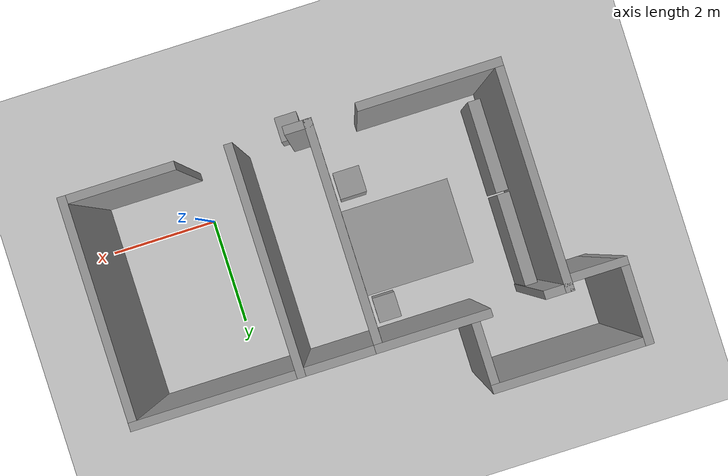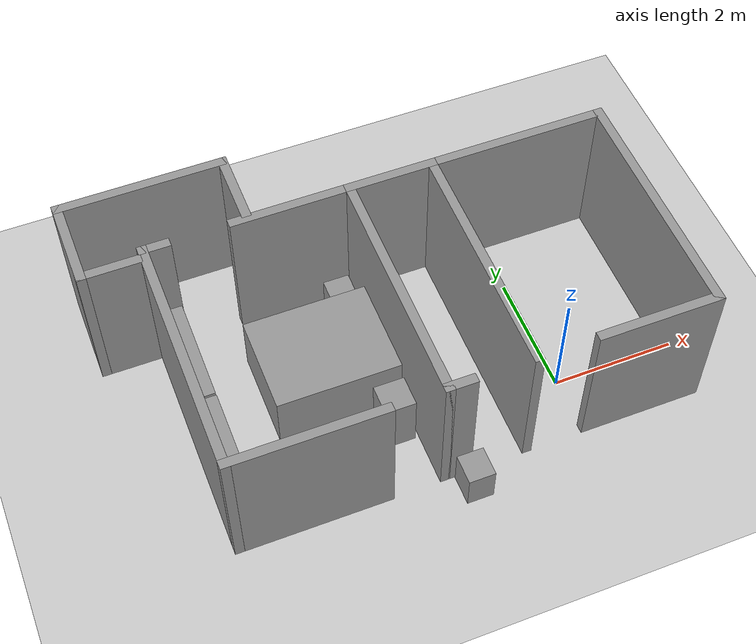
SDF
<sdf version="1.9">
 <world name="default">
  <model name="ground_plane">
   <static>true</static>
   <link name="link">
    <collision name="collision">
     <geometry><plane><normal>0 0 1</normal><size>100 100</size></plane></geometry>
     <surface><friction><ode><mu>100</mu><mu2>50</mu2></ode></friction></surface>
    </collision>
    <visual name="visual">
     <cast_shadows>false</cast_shadows>
     <geometry><plane><normal>0 0 1</normal><size>100 100</size></plane></geometry>
     <material>
      <script><uri>file://media/materials/scripts/gazebo.material</uri><name>Gazebo/Grey</name></script>
     </material>
    </visual>
   </link>
  </model>
  <model name="cma_escritorio">
   <pose>-1.8304 1.03024 0 0 0 0</pose>
   <link name="Wall_11">
    <collision name="Wall_11_Collision">
     <geometry><box><size>2 0.14999999999999999 2.5</size></box></geometry>
     <pose>0 0 1.25 0 0 0</pose>
    </collision>
    <visual name="Wall_11_Visual">
     <pose>0 0 1.25 0 0 0</pose>
     <geometry><box><size>2 0.14999999999999999 2.5</size></box></geometry>
     <material>
      <script><uri>file://media/materials/scripts/gazebo.material</uri><name>Gazebo/Grey</name></script>
      <ambient>1 1 1 1</ambient>
     </material>
    </visual>
    <pose>-1.3999999999999999 1.9299999999999999 0 0 0 3.1415899999999999</pose>
   </link>
   <link name="Wall_2">
    <collision name="Wall_2_Collision">
     <geometry><box><size>4 0.14999999999999999 2.5</size></box></geometry>
     <pose>0 0 1.25 0 0 0</pose>
    </collision>
    <visual name="Wall_2_Visual">
     <pose>0 0 1.25 0 0 0</pose>
     <geometry><box><size>4 0.14999999999999999 2.5</size></box></geometry>
     <material>
      <script><uri>file://media/materials/scripts/gazebo.material</uri><name>Gazebo/Grey</name></script>
      <ambient>1 1 1 1</ambient>
     </material>
    </visual>
    <pose>0.875 0.0050000000000000001 0 0 0 1.5708</pose>
   </link>
   <link name="Wall_25">
    <collision name="Wall_25_Collision">
     <geometry><box><size>2.5 0.14999999999999999 2.5</size></box></geometry>
     <pose>0 0 1.25 0 0 0</pose>
    </collision>
    <visual name="Wall_25_Visual">
     <pose>0 0 1.25 0 0 0</pose>
     <geometry><box><size>2.5 0.14999999999999999 2.5</size></box></geometry>
     <material>
      <script><uri>file://media/materials/scripts/gazebo.material</uri><name>Gazebo/Grey</name></script>
      <ambient>1 1 1 1</ambient>
     </material>
    </visual>
    <pose>-2.5499999999999998 -1.9299999999999999 0 0 0 3.1415899999999999</pose>
   </link>
   <link name="Wall_26">
    <collision name="Wall_26_Collision">
     <geometry><box><size>4 0.14999999999999999 2.5</size></box></geometry>
     <pose>0 0 1.25 0 0 0</pose>
    </collision>
    <visual name="Wall_26_Visual">
     <pose>0 0 1.25 0 0 0</pose>
     <geometry><box><size>4 0.14999999999999999 2.5</size></box></geometry>
     <material>
      <script><uri>file://media/materials/scripts/gazebo.material</uri><name>Gazebo/Grey</name></script>
      <ambient>1 1 1 1</ambient>
     </material>
    </visual>
    <pose>-3.7250000000000001 -0.0050000000000000001 0 0 0 1.5708</pose>
   </link>
   <link name="Wall_27">
    <collision name="Wall_27_Collision">
     <geometry><box><size>0.5 0.14999999999999999 2.5</size></box></geometry>
     <pose>0 0 1.25 0 0 0</pose>
    </collision>
    <visual name="Wall_27_Visual">
     <pose>0 0 1.25 0 0 0</pose>
     <geometry><box><size>0.5 0.14999999999999999 2.5</size></box></geometry>
     <material>
      <script><uri>file://media/materials/scripts/gazebo.material</uri><name>Gazebo/Grey</name></script>
      <ambient>1 1 1 1</ambient>
     </material>
    </visual>
    <pose>-3.5499999999999998 1.9199999999999999 0 0 0 0</pose>
   </link>
   <link name="Wall_3">
    <collision name="Wall_3_Collision">
     <geometry><box><size>3 0.14999999999999999 2.5</size></box></geometry>
     <pose>0 0 1.25 0 0 0</pose>
    </collision>
    <visual name="Wall_3_Visual">
     <pose>0 0 1.25 0 0 0</pose>
     <geometry><box><size>3 0.14999999999999999 2.5</size></box></geometry>
     <material>
      <script><uri>file://media/materials/scripts/gazebo.material</uri><name>Gazebo/Grey</name></script>
      <ambient>1 1 1 1</ambient>
     </material>
    </visual>
    <pose>2.2999999999999998 1.9299999999999999 0 0 0 0</pose>
   </link>
   <link name="Wall_4">
    <collision name="Wall_4_Collision">
     <geometry><box><size>4 0.14999999999999999 2.5</size></box></geometry>
     <pose>0 0 1.25 0 0 0</pose>
    </collision>
    <visual name="Wall_4_Visual">
     <pose>0 0 1.25 0 0 0</pose>
     <geometry><box><size>4 0.14999999999999999 2.5</size></box></geometry>
     <material>
      <script><uri>file://media/materials/scripts/gazebo.material</uri><name>Gazebo/Grey</name></script>
      <ambient>1 1 1 1</ambient>
     </material>
    </visual>
    <pose>3.7250000000000001 0.0050000000000000001 0 0 0 -1.5708</pose>
   </link>
   <link name="Wall_5">
    <collision name="Wall_5_Collision">
     <geometry><box><size>2 0.14999999999999999 2.5</size></box></geometry>
     <pose>0 0 1.25 0 0 0</pose>
    </collision>
    <visual name="Wall_5_Visual">
     <pose>0 0 1.25 0 0 0</pose>
     <geometry><box><size>2 0.14999999999999999 2.5</size></box></geometry>
     <material>
      <script><uri>file://media/materials/scripts/gazebo.material</uri><name>Gazebo/Grey</name></script>
      <ambient>1 1 1 1</ambient>
     </material>
    </visual>
    <pose>2.7999999999999998 -1.9199999999999999 0 0 0 3.1415899999999999</pose>
   </link>
   <link name="Wall_7">
    <collision name="Wall_7_Collision">
     <geometry><box><size>1.5 0.14999999999999999 2.5</size></box></geometry>
     <pose>0 0 1.25 0 0 0</pose>
    </collision>
    <visual name="Wall_7_Visual">
     <pose>0 0 1.25 0 0 0</pose>
     <geometry><box><size>1.5 0.14999999999999999 2.5</size></box></geometry>
     <material>
      <script><uri>file://media/materials/scripts/gazebo.material</uri><name>Gazebo/Grey</name></script>
      <ambient>1 1 1 1</ambient>
     </material>
    </visual>
    <pose>0.20000000000000001 1.9299999999999999 0 0 0 3.1415899999999999</pose>
   </link>
   <link name="Wall_8">
    <collision name="Wall_8_Collision">
     <geometry><box><size>4 0.14999999999999999 2.5</size></box></geometry>
     <pose>0 0 1.25 0 0 0</pose>
    </collision>
    <visual name="Wall_8_Visual">
     <pose>0 0 1.25 0 0 0</pose>
     <geometry><box><size>4 0.14999999999999999 2.5</size></box></geometry>
     <material>
      <script><uri>file://media/materials/scripts/gazebo.material</uri><name>Gazebo/Grey</name></script>
      <ambient>1 1 1 1</ambient>
     </material>
    </visual>
    <pose>-0.47499999999999998 0.0050000000000000001 0 0 0 -1.5708</pose>
   </link>
   <link name="Wall_9">
    <collision name="Wall_9_Collision">
     <geometry><box><size>0.5 0.14999999999999999 2.5</size></box></geometry>
     <pose>0 0 1.25 0 0 0</pose>
    </collision>
    <visual name="Wall_9_Visual">
     <pose>0 0 1.25 0 0 0</pose>
     <geometry><box><size>0.5 0.14999999999999999 2.5</size></box></geometry>
     <material>
      <script><uri>file://media/materials/scripts/gazebo.material</uri><name>Gazebo/Grey</name></script>
      <ambient>1 1 1 1</ambient>
     </material>
    </visual>
    <pose>-0.29999999999999999 -1.9199999999999999 0 0 0 0</pose>
   </link>
   <static>true</static>
  </model>
  <model name="cma_banheiro">
   <pose>-5.2292800000000002 3.4870999999999999 0 0 0 0</pose>
   <link name="Wall_0">
    <collision name="Wall_0_Collision">
     <geometry><box><size>1 0.14999999999999999 2.5</size></box></geometry>
     <pose>0 0 1.25 0 0 0</pose>
    </collision>
    <visual name="Wall_0_Visual">
     <pose>0 0 1.25 0 0 0</pose>
     <geometry><box><size>1 0.14999999999999999 2.5</size></box></geometry>
     <material>
      <script><uri>file://media/materials/scripts/gazebo.material</uri><name>Gazebo/Grey</name></script>
      <ambient>1 1 1 1</ambient>
     </material>
    </visual>
    <pose>-0.875 -0.67500000000000004 0 0 0 3.1415899999999999</pose>
   </link>
   <link name="Wall_1">
    <collision name="Wall_1_Collision">
     <geometry><box><size>1.5 0.14999999999999999 2.5</size></box></geometry>
     <pose>0 0 1.25 0 0 0</pose>
    </collision>
    <visual name="Wall_1_Visual">
     <pose>0 0 1.25 0 0 0</pose>
     <geometry><box><size>1.5 0.14999999999999999 2.5</size></box></geometry>
     <material>
      <script><uri>file://media/materials/scripts/gazebo.material</uri><name>Gazebo/Grey</name></script>
      <ambient>1 1 1 1</ambient>
     </material>
    </visual>
    <pose>-1.3 0 0 0 0 1.5708</pose>
   </link>
   <link name="Wall_2">
    <collision name="Wall_2_Collision">
     <geometry><box><size>2.75 0.14999999999999999 2.5</size></box></geometry>
     <pose>0 0 1.25 0 0 0</pose>
    </collision>
    <visual name="Wall_2_Visual">
     <pose>0 0 1.25 0 0 0</pose>
     <geometry><box><size>2.75 0.14999999999999999 2.5</size></box></geometry>
     <material>
      <script><uri>file://media/materials/scripts/gazebo.material</uri><name>Gazebo/Grey</name></script>
      <ambient>1 1 1 1</ambient>
     </material>
    </visual>
    <pose>0 0.67500000000000004 0 0 0 0</pose>
   </link>
   <link name="Wall_4">
    <collision name="Wall_4_Collision">
     <geometry><box><size>1.25 0.14999999999999999 2.5</size></box></geometry>
     <pose>0 0 1.25 0 0 0</pose>
    </collision>
    <visual name="Wall_4_Visual">
     <pose>0 0 1.25 0 0 0</pose>
     <geometry><box><size>1.25 0.14999999999999999 2.5</size></box></geometry>
     <material>
      <script><uri>file://media/materials/scripts/gazebo.material</uri><name>Gazebo/Grey</name></script>
      <ambient>1 1 1 1</ambient>
     </material>
    </visual>
    <pose>1.3 0.125 0 0 0 -1.5708</pose>
   </link>
   <static>true</static>
  </model>
  <model name="cma_bau_s">
   <link name="link_1">
    <pose>0.109594 0.27229300000000001 0 0 0 0</pose>
    <inertial>
     <mass>0.12547900000000001</mass>
     <inertia>
      <ixx>0.0064194300000000003</ixx>
      <ixy>0</ixy>
      <ixz>0</ixz>
      <iyy>0.0059753999999999996</iyy>
      <iyz>0</iyz>
      <izz>0.0042208499999999999</izz>
     </inertia>
    </inertial>
    <visual name="visual">
     <geometry><box><size>0.42496400000000001 0.47228300000000001 0.62511799999999995</size></box></geometry>
     <material>
      <lighting>true</lighting>
      <script><uri>file://media/materials/scripts/gazebo.material</uri><name>Gazebo/Grey</name></script>
      <ambient>0.300000012 0.300000012 0.300000012 1</ambient>
      <diffuse>0.699999988 0.699999988 0.699999988 1</diffuse>
      <specular>0.00999999978 0.00999999978 0.00999999978 1</specular>
      <emissive>0 0 0 1</emissive>
     </material>
    </visual>
    <collision name="collision">
     <geometry><box><size>0.42496400000000001 0.47228300000000001 0.62511799999999995</size></box></geometry>
     <surface>
      <friction>
       <ode><mu>1</mu><mu2>1</mu2><fdir1>0 0 0</fdir1><slip1>0</slip1><slip2>0</slip2></ode>
       <torsional>
        <coefficient>1</coefficient>
        <patch_radius>0</patch_radius>
        <surface_radius>0</surface_radius>
        <use_patch_radius>true</use_patch_radius>
        <ode><slip>0</slip></ode>
       </torsional>
      </friction>
      <bounce><restitution_coefficient>0</restitution_coefficient><threshold>1000000</threshold></bounce>
      <contact>
       <collide_without_contact>false</collide_without_contact>
       <collide_without_contact_bitmask>1</collide_without_contact_bitmask>
       <collide_bitmask>1</collide_bitmask>
       <ode>
        <soft_cfm>0</soft_cfm>
        <soft_erp>0.20000000000000001</soft_erp>
        <kp>10000000000000</kp>
        <kd>1</kd>
        <max_vel>0.01</max_vel>
        <min_depth>0</min_depth>
       </ode>
       <bullet>
        <split_impulse>true</split_impulse>
        <split_impulse_penetration_threshold>-0.01</split_impulse_penetration_threshold>
        <soft_cfm>0</soft_cfm>
        <soft_erp>0.20000000000000001</soft_erp>
        <kp>10000000000000</kp>
        <kd>1</kd>
       </bullet>
      </contact>
     </surface>
    </collision>
   </link>
   <static>false</static>
   <pose>-2.04284 -1.48573 0.31255899999999998 3.0000000000000005e-06 -1.0339757656912846e-25 0.000406</pose>
  </model>
  <model name="cma_cama_c_0">
   <link name="link_0">
    <pose>5.0000000000000004e-06 -3.9999999999999998e-06 0 0 0 0</pose>
    <inertial>
     <mass>3.1835800000000001</mass>
     <inertia>
      <ixx>0.93486199999999997</ixx>
      <ixy>0</ixy>
      <ixz>0</ixz>
      <iyy>1.3306899999999999</iyy>
      <iyz>0</iyz>
      <izz>1.7349600000000001</izz>
     </inertia>
    </inertial>
    <visual name="visual">
     <geometry><box><size>2.0039400000000001 1.58866 1</size></box></geometry>
     <material>
      <lighting>true</lighting>
      <script><uri>file://media/materials/scripts/gazebo.material</uri><name>Gazebo/Grey</name></script>
      <ambient>0.300000012 0.300000012 0.300000012 1</ambient>
      <diffuse>0.699999988 0.699999988 0.699999988 1</diffuse>
      <specular>0.00999999978 0.00999999978 0.00999999978 1</specular>
      <emissive>0 0 0 1</emissive>
     </material>
    </visual>
    <collision name="collision">
     <geometry><box><size>2.0039400000000001 1.58866 1</size></box></geometry>
     <surface>
      <friction>
       <ode><mu>1</mu><mu2>1</mu2><fdir1>0 0 0</fdir1><slip1>0</slip1><slip2>0</slip2></ode>
       <torsional>
        <coefficient>1</coefficient>
        <patch_radius>0</patch_radius>
        <surface_radius>0</surface_radius>
        <use_patch_radius>true</use_patch_radius>
        <ode><slip>0</slip></ode>
       </torsional>
      </friction>
      <bounce><restitution_coefficient>0</restitution_coefficient><threshold>1000000</threshold></bounce>
      <contact>
       <collide_without_contact>false</collide_without_contact>
       <collide_without_contact_bitmask>1</collide_without_contact_bitmask>
       <collide_bitmask>1</collide_bitmask>
       <ode>
        <soft_cfm>0</soft_cfm>
        <soft_erp>0.20000000000000001</soft_erp>
        <kp>10000000000000</kp>
        <kd>1</kd>
        <max_vel>0.01</max_vel>
        <min_depth>0</min_depth>
       </ode>
       <bullet>
        <split_impulse>true</split_impulse>
        <split_impulse_penetration_threshold>-0.01</split_impulse_penetration_threshold>
        <soft_cfm>0</soft_cfm>
        <soft_erp>0.20000000000000001</soft_erp>
        <kp>10000000000000</kp>
        <kd>1</kd>
       </bullet>
      </contact>
     </surface>
    </collision>
   </link>
   <static>false</static>
   <pose>-3.3823799999999999 1.3878699999999999 0.5 0 0 -2.0000000000000003e-06</pose>
  </model>
  <model name="cma_bau_s_0">
   <link name="link_1">
    <pose>0.109594 0.27229300000000001 0 0 0 0</pose>
    <inertial>
     <mass>0.12547900000000001</mass>
     <inertia>
      <ixx>0.0064194300000000003</ixx>
      <ixy>0</ixy>
      <ixz>0</ixz>
      <iyy>0.0059753999999999996</iyy>
      <iyz>0</iyz>
      <izz>0.0042208499999999999</izz>
     </inertia>
    </inertial>
    <visual name="visual">
     <geometry><box><size>0.42496400000000001 0.47228300000000001 0.62511799999999995</size></box></geometry>
     <material>
      <lighting>true</lighting>
      <script><uri>file://media/materials/scripts/gazebo.material</uri><name>Gazebo/Grey</name></script>
      <ambient>0.300000012 0.300000012 0.300000012 1</ambient>
      <diffuse>0.699999988 0.699999988 0.699999988 1</diffuse>
      <specular>0.00999999978 0.00999999978 0.00999999978 1</specular>
      <emissive>0 0 0 1</emissive>
     </material>
    </visual>
    <collision name="collision">
     <geometry><box><size>0.42496400000000001 0.47228300000000001 0.62511799999999995</size></box></geometry>
     <surface>
      <friction>
       <ode><mu>1</mu><mu2>1</mu2><fdir1>0 0 0</fdir1><slip1>0</slip1><slip2>0</slip2></ode>
       <torsional>
        <coefficient>1</coefficient>
        <patch_radius>0</patch_radius>
        <surface_radius>0</surface_radius>
        <use_patch_radius>true</use_patch_radius>
        <ode><slip>0</slip></ode>
       </torsional>
      </friction>
      <bounce><restitution_coefficient>0</restitution_coefficient><threshold>1000000</threshold></bounce>
      <contact>
       <collide_without_contact>false</collide_without_contact>
       <collide_without_contact_bitmask>1</collide_without_contact_bitmask>
       <collide_bitmask>1</collide_bitmask>
       <ode>
        <soft_cfm>0</soft_cfm>
        <soft_erp>0.20000000000000001</soft_erp>
        <kp>10000000000000</kp>
        <kd>1</kd>
        <max_vel>0.01</max_vel>
        <min_depth>0</min_depth>
       </ode>
       <bullet>
        <split_impulse>true</split_impulse>
        <split_impulse_penetration_threshold>-0.01</split_impulse_penetration_threshold>
        <soft_cfm>0</soft_cfm>
        <soft_erp>0.20000000000000001</soft_erp>
        <kp>10000000000000</kp>
        <kd>1</kd>
       </bullet>
      </contact>
     </surface>
    </collision>
   </link>
   <static>false</static>
   <pose>-2.7652600000000001 2.2428300000000001 0.31256 -1.2999999999999998e-05 -3.0000000000000005e-06 -0.00052400000000000005</pose>
  </model>
  <model name="cma_gaveteiro_1">
   <link name="link_0">
    <pose>0 3.9999999999999998e-06 0 0 0 0</pose>
    <inertial>
     <mass>0.245086</mass>
     <inertia>
      <ixx>0.025418</ixx>
      <ixy>0</ixy>
      <ixz>0</ixz>
      <iyy>0.025441100000000001</iyy>
      <iyz>0</iyz>
      <izz>0.010011300000000001</izz>
     </inertia>
    </inertial>
    <visual name="visual">
     <geometry><box><size>0.49565700000000001 0.49449100000000001 1</size></box></geometry>
     <material>
      <lighting>true</lighting>
      <script><uri>file://media/materials/scripts/gazebo.material</uri><name>Gazebo/Grey</name></script>
      <ambient>0.300000012 0.300000012 0.300000012 1</ambient>
      <diffuse>0.699999988 0.699999988 0.699999988 1</diffuse>
      <specular>0.00999999978 0.00999999978 0.00999999978 1</specular>
      <emissive>0 0 0 1</emissive>
     </material>
    </visual>
    <collision name="collision">
     <geometry><box><size>0.49565700000000001 0.49449100000000001 1</size></box></geometry>
     <surface>
      <friction>
       <ode><mu>1</mu><mu2>1</mu2><fdir1>0 0 0</fdir1><slip1>0</slip1><slip2>0</slip2></ode>
       <torsional>
        <coefficient>1</coefficient>
        <patch_radius>0</patch_radius>
        <surface_radius>0</surface_radius>
        <use_patch_radius>true</use_patch_radius>
        <ode><slip>0</slip></ode>
       </torsional>
      </friction>
      <bounce><restitution_coefficient>0</restitution_coefficient><threshold>1000000</threshold></bounce>
      <contact>
       <collide_without_contact>false</collide_without_contact>
       <collide_without_contact_bitmask>1</collide_without_contact_bitmask>
       <collide_bitmask>1</collide_bitmask>
       <ode>
        <soft_cfm>0</soft_cfm>
        <soft_erp>0.20000000000000001</soft_erp>
        <kp>10000000000000</kp>
        <kd>1</kd>
        <max_vel>0.01</max_vel>
        <min_depth>0</min_depth>
       </ode>
       <bullet>
        <split_impulse>true</split_impulse>
        <split_impulse_penetration_threshold>-0.01</split_impulse_penetration_threshold>
        <soft_cfm>0</soft_cfm>
        <soft_erp>0.20000000000000001</soft_erp>
        <kp>10000000000000</kp>
        <kd>1</kd>
       </bullet>
      </contact>
     </surface>
    </collision>
   </link>
   <static>false</static>
   <pose>-2.68858 0.131635 0.49999700000000002 -6.000000000000001e-06 -6.000000000000001e-06 -0.00035799999999999997</pose>
  </model>
  <model name="cma_armario_6">
   <link name="link_0">
    <pose>1.3215699999999999 0.88517800000000002 0.5 0 0 0</pose>
    <inertial>
     <mass>0.40237600000000001</mass>
     <inertia>
      <ixx>0.0353686</ixx>
      <ixy>0</ixy>
      <ixz>0</ixz>
      <iyy>0.13261600000000001</iyy>
      <iyz>0</iyz>
      <izz>0.100922</izz>
     </inertia>
    </inertial>
    <visual name="visual">
     <geometry><box><size>1.7187699999999999 0.234069 1</size></box></geometry>
     <material>
      <lighting>true</lighting>
      <script><uri>file://media/materials/scripts/gazebo.material</uri><name>Gazebo/Grey</name></script>
      <ambient>0.300000012 0.300000012 0.300000012 1</ambient>
      <diffuse>0.699999988 0.699999988 0.699999988 1</diffuse>
      <specular>0.00999999978 0.00999999978 0.00999999978 1</specular>
      <emissive>0 0 0 1</emissive>
     </material>
    </visual>
    <collision name="collision">
     <geometry><box><size>1.7187699999999999 0.234069 1</size></box></geometry>
     <surface>
      <friction>
       <ode><mu>1</mu><mu2>1</mu2><fdir1>0 0 0</fdir1><slip1>0</slip1><slip2>0</slip2></ode>
       <torsional>
        <coefficient>1</coefficient>
        <patch_radius>0</patch_radius>
        <surface_radius>0</surface_radius>
        <use_patch_radius>true</use_patch_radius>
        <ode><slip>0</slip></ode>
       </torsional>
      </friction>
      <bounce><restitution_coefficient>0</restitution_coefficient><threshold>1000000</threshold></bounce>
      <contact>
       <collide_without_contact>false</collide_without_contact>
       <collide_without_contact_bitmask>1</collide_without_contact_bitmask>
       <collide_bitmask>1</collide_bitmask>
       <ode>
        <soft_cfm>0</soft_cfm>
        <soft_erp>0.20000000000000001</soft_erp>
        <kp>10000000000000</kp>
        <kd>1</kd>
        <max_vel>0.01</max_vel>
        <min_depth>0</min_depth>
       </ode>
       <bullet>
        <split_impulse>true</split_impulse>
        <split_impulse_penetration_threshold>-0.01</split_impulse_penetration_threshold>
        <soft_cfm>0</soft_cfm>
        <soft_erp>0.20000000000000001</soft_erp>
        <kp>10000000000000</kp>
        <kd>1</kd>
       </bullet>
      </contact>
     </surface>
    </collision>
   </link>
   <static>false</static>
   <pose>-4.3861400000000001 0.68759300000000001 0 0 0 1.56602</pose>
  </model>
  <model name="cma_armario_7">
   <link name="link_0">
    <pose>1.3215699999999999 0.88517800000000002 0.5 0 0 0</pose>
    <inertial>
     <mass>0.40237600000000001</mass>
     <inertia>
      <ixx>0.0353686</ixx>
      <ixy>0</ixy>
      <ixz>0</ixz>
      <iyy>0.13261600000000001</iyy>
      <iyz>0</iyz>
      <izz>0.100922</izz>
     </inertia>
    </inertial>
    <visual name="visual">
     <geometry><box><size>1.7187699999999999 0.234069 1</size></box></geometry>
     <material>
      <lighting>true</lighting>
      <script><uri>file://media/materials/scripts/gazebo.material</uri><name>Gazebo/Grey</name></script>
      <ambient>0.300000012 0.300000012 0.300000012 1</ambient>
      <diffuse>0.699999988 0.699999988 0.699999988 1</diffuse>
      <specular>0.00999999978 0.00999999978 0.00999999978 1</specular>
      <emissive>0 0 0 1</emissive>
     </material>
    </visual>
    <collision name="collision">
     <geometry><box><size>1.7187699999999999 0.234069 1</size></box></geometry>
     <surface>
      <friction>
       <ode><mu>1</mu><mu2>1</mu2><fdir1>0 0 0</fdir1><slip1>0</slip1><slip2>0</slip2></ode>
       <torsional>
        <coefficient>1</coefficient>
        <patch_radius>0</patch_radius>
        <surface_radius>0</surface_radius>
        <use_patch_radius>true</use_patch_radius>
        <ode><slip>0</slip></ode>
       </torsional>
      </friction>
      <bounce><restitution_coefficient>0</restitution_coefficient><threshold>1000000</threshold></bounce>
      <contact>
       <collide_without_contact>false</collide_without_contact>
       <collide_without_contact_bitmask>1</collide_without_contact_bitmask>
       <collide_bitmask>1</collide_bitmask>
       <ode>
        <soft_cfm>0</soft_cfm>
        <soft_erp>0.20000000000000001</soft_erp>
        <kp>10000000000000</kp>
        <kd>1</kd>
        <max_vel>0.01</max_vel>
        <min_depth>0</min_depth>
       </ode>
       <bullet>
        <split_impulse>true</split_impulse>
        <split_impulse_penetration_threshold>-0.01</split_impulse_penetration_threshold>
        <soft_cfm>0</soft_cfm>
        <soft_erp>0.20000000000000001</soft_erp>
        <kp>10000000000000</kp>
        <kd>1</kd>
       </bullet>
      </contact>
     </surface>
    </collision>
   </link>
   <static>false</static>
   <pose>-4.3857799999999996 -1.0660000000000001 -1.9999999999999999e-06 1.9999999999999999e-06 -2.1175823681357508e-22 1.5680800000000001</pose>
  </model>
 </world>
</sdf>
